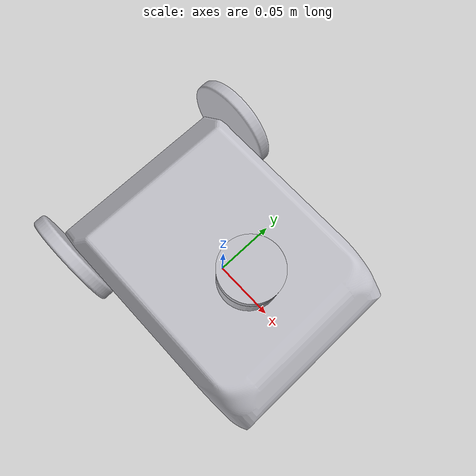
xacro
<?xml version="1.0" ?>
<robot name="bot" xmlns:xacro="http://www.ros.org/wiki/xacro">

<xacro:include filename="$(find bot_description)/urdf/materials.xacro" />
<xacro:include filename="$(find bot_description)/urdf/bot.trans" />
<xacro:include filename="$(find bot_description)/urdf/bot.gazebo" />
<link name="base_link">
  <inertial>
    <origin xyz="0.0020394017926573475 -9.274503162711054e-08 0.037865804686589045" rpy="0 0 0"/>
    <mass value="6.594639811774716"/>
    <inertia ixx="0.012007" iyy="0.018602" izz="0.02919" ixy="0.0" iyz="-0.0" ixz="-0.000227"/>
  </inertial>
  <visual>
    <origin xyz="0 0 0" rpy="0 0 0"/>
    <geometry>
      <mesh filename="package://bot_description/meshes/base_link.stl" scale="0.001 0.001 0.001"/>
    </geometry>
    <material name="silver"/>
  </visual>
  <collision>
    <origin xyz="0 0 0" rpy="0 0 0"/>
    <geometry>
      <mesh filename="package://bot_description/meshes/base_link.stl" scale="0.001 0.001 0.001"/>
    </geometry>
  </collision>
</link>

<link name="left_wheel_1">
  <inertial>
    <origin xyz="-9.56179579958416e-15 -0.0050000000000000044 -1.3877787807814457e-17" rpy="0 0 0"/>
    <mass value="0.33749938763215337"/>
    <inertia ixx="0.000123" iyy="0.000239" izz="0.000123" ixy="0.0" iyz="0.0" ixz="-0.0"/>
  </inertial>
  <visual>
    <origin xyz="0.075 -0.085 -0.0375" rpy="0 0 0"/>
    <geometry>
      <mesh filename="package://bot_description/meshes/left_wheel_1.stl" scale="0.001 0.001 0.001"/>
    </geometry>
    <material name="silver"/>
  </visual>
  <collision>
    <origin xyz="0.075 -0.085 -0.0375" rpy="0 0 0"/>
    <geometry>
      <mesh filename="package://bot_description/meshes/left_wheel_1.stl" scale="0.001 0.001 0.001"/>
    </geometry>
  </collision>
</link>

<link name="right_wheel_1">
  <inertial>
    <origin xyz="-9.56179579958416e-15 0.0049999999999999906 0.0" rpy="0 0 0"/>
    <mass value="0.33749938763215337"/>
    <inertia ixx="0.000123" iyy="0.000239" izz="0.000123" ixy="0.0" iyz="-0.0" ixz="-0.0"/>
  </inertial>
  <visual>
    <origin xyz="0.075 0.085 -0.0375" rpy="0 0 0"/>
    <geometry>
      <mesh filename="package://bot_description/meshes/right_wheel_1.stl" scale="0.001 0.001 0.001"/>
    </geometry>
    <material name="silver"/>
  </visual>
  <collision>
    <origin xyz="0.075 0.085 -0.0375" rpy="0 0 0"/>
    <geometry>
      <mesh filename="package://bot_description/meshes/right_wheel_1.stl" scale="0.001 0.001 0.001"/>
    </geometry>
  </collision>
</link>

<link name="castor_1">
  <inertial>
    <origin xyz="-2.7755575615628914e-17 -5.911529352152055e-18 -0.008348053398638122" rpy="0 0 0"/>
    <mass value="0.18870786706611672"/>
    <inertia ixx="2.5e-05" iyy="2.5e-05" izz="3.9e-05" ixy="-0.0" iyz="-0.0" ixz="-0.0"/>
  </inertial>
  <visual>
    <origin xyz="-0.07 -0.0 -0.0215" rpy="0 0 0"/>
    <geometry>
      <mesh filename="package://bot_description/meshes/castor_1.stl" scale="0.001 0.001 0.001"/>
    </geometry>
    <material name="silver"/>
  </visual>
  <collision>
    <origin xyz="-0.07 -0.0 -0.0215" rpy="0 0 0"/>
    <geometry>
      <mesh filename="package://bot_description/meshes/castor_1.stl" scale="0.001 0.001 0.001"/>
    </geometry>
  </collision>
</link>

<link name="lidar_1">
  <inertial>
    <origin xyz="0.0 0.0 0.0050000000000000044" rpy="0 0 0"/>
    <mass value="0.12484885554906686"/>
    <inertia ixx="1.7e-05" iyy="1.7e-05" izz="3.2e-05" ixy="-0.0" iyz="0.0" ixz="0.0"/>
  </inertial>
  <visual>
    <origin xyz="-0.025 -0.0 -0.0775" rpy="0 0 0"/>
    <geometry>
      <mesh filename="package://bot_description/meshes/lidar_1.stl" scale="0.001 0.001 0.001"/>
    </geometry>
    <material name="silver"/>
  </visual>
  <collision>
    <origin xyz="-0.025 -0.0 -0.0775" rpy="0 0 0"/>
    <geometry>
      <mesh filename="package://bot_description/meshes/lidar_1.stl" scale="0.001 0.001 0.001"/>
    </geometry>
  </collision>
</link>

<joint name="Revolute1" type="continuous">
  <origin xyz="-0.075 0.085 0.0375" rpy="0 0 0"/>
  <parent link="base_link"/>
  <child link="left_wheel_1"/>
  <axis xyz="0.0 1.0 0.0"/>
</joint>

<joint name="Revolute2" type="continuous">
  <origin xyz="-0.075 -0.085 0.0375" rpy="0 0 0"/>
  <parent link="base_link"/>
  <child link="right_wheel_1"/>
  <axis xyz="0.0 1.0 0.0"/>
</joint>

<joint name="Rigid3" type="fixed">
  <origin xyz="0.07 0.0 0.0215" rpy="0 0 0"/>
  <parent link="base_link"/>
  <child link="castor_1"/>
</joint>

<joint name="Rigid4" type="fixed">
  <origin xyz="0.025 0.0 0.0775" rpy="0 0 0"/>
  <parent link="base_link"/>
  <child link="lidar_1"/>
</joint>

</robot>

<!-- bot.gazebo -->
<robot name="bot" xmlns:xacro="http://www.ros.org/wiki/xacro" >

<xacro:property name="body_color" value="Gazebo/Silver" />

<gazebo>
  <plugin name="control" filename="libgazebo_ros_control.so"/>
</gazebo>
<gazebo reference="base_link">
  <material>${body_color}</material>
  <mu1>0.2</mu1>
  <mu2>0.2</mu2>
  <selfCollide>true</selfCollide>
  <gravity>true</gravity>
</gazebo>

<gazebo reference="left_wheel_1">
  <material>${body_color}</material>
  <mu1>0.5</mu1>
  <mu2>0.5</mu2>
  <selfCollide>true</selfCollide>
</gazebo>

<gazebo reference="right_wheel_1">
  <material>${body_color}</material>
  <mu1>0.5</mu1>
  <mu2>0.5</mu2>
  <selfCollide>true</selfCollide>
</gazebo>

<gazebo reference="castor_1">
  <material>${body_color}</material>
  <mu1>0.2</mu1>
  <mu2>0.2</mu2>
  <selfCollide>true</selfCollide>
</gazebo>

<gazebo reference="lidar_1">
  <material>${body_color}</material>
  <mu1>0.2</mu1>
  <mu2>0.2</mu2>
  <selfCollide>true</selfCollide>
</gazebo>
<gazebo>
  <plugin name="differential_drive_controller" filename="libgazebo_ros_diff_drive.so">

    <!-- Plugin update rate in Hz -->
    <updateRate>100</updateRate>

    <!-- Name of left joint, defaults to `left_joint` -->
    <leftJoint>Revolute1</leftJoint>

    <!-- Name of right joint, defaults to `right_joint` -->
    <rightJoint>Revolute2</rightJoint>

    <!-- The distance from the center of one wheel to the other, in meters, defaults to 0.34 m -->
    <wheelSeparation>0.15</wheelSeparation>

    <!-- Diameter of the wheels, in meters, defaults to 0.15 m -->
    <wheelDiameter>0.075</wheelDiameter>

    <!-- Wheel acceleration, in rad/s^2, defaults to 0.0 rad/s^2 -->
    <wheelAcceleration>1.0</wheelAcceleration>

    <!-- Maximum torque which the wheels can produce, in Nm, defaults to 5 Nm -->
    <wheelTorque>50</wheelTorque>

    <!-- Topic to receive geometry_msgs/Twist message commands, defaults to `cmd_vel` -->
    <commandTopic>cmd_vel</commandTopic>

    <!-- Topic to publish nav_msgs/Odometry messages, defaults to `odom` -->
    <odometryTopic>odom</odometryTopic>

    <!-- Odometry frame, defaults to `odom` -->
    <odometryFrame>odom</odometryFrame>

    <!-- Robot frame to calculate odometry from, defaults to `base_footprint` -->
    <robotBaseFrame>base_link</robotBaseFrame>

    <!-- Odometry source, 0 for ENCODER, 1 for WORLD, defaults to WORLD -->
    <odometrySource>1</odometrySource>

    <!-- Set to true to publish transforms for the wheel links, defaults to false -->
    <publishWheelTF>true</publishWheelTF>

    <!-- Set to true to publish transforms for the odometry, defaults to true -->
    <publishOdom>true</publishOdom>

    <!-- Set to true to publish sensor_msgs/JointState on /joint_states for the wheel joints, defaults to false -->
    <publishWheelJointState>false</publishWheelJointState>

    <!-- Set to true to swap right and left wheels, defaults to true -->
    <legacyMode>false</legacyMode>
  </plugin>
</gazebo>
   <!-- hokuyo -->
  <gazebo reference="lidar_1">
    <sensor type="ray" name="head_hokuyo_sensor">
      <pose>0 0 0 0 0 0</pose>
      <visualize>true</visualize>
      <update_rate>40</update_rate>
      <ray>
        <scan>
          <horizontal>
            <samples>720</samples>
            <resolution>1</resolution>
            <min_angle>1.570796</min_angle>
            <max_angle>-1.570796</max_angle>
          </horizontal>
        </scan>
        <range>
          <min>0.1</min>
          <max>60.0</max>
          <resolution>0.01</resolution>
        </range>
        <noise>
          <type>gaussian</type>
          <mean>0.0</mean>
          <stddev>0.01</stddev>
        </noise>
      </ray>
      <plugin name="gazebo_ros_head_hokuyo_controller" filename="libgazebo_ros_laser.so">
        <topicName>/scan</topicName>
        <frameName>lidar_1</frameName>
      </plugin>
    </sensor>
  </gazebo>
</robot>
